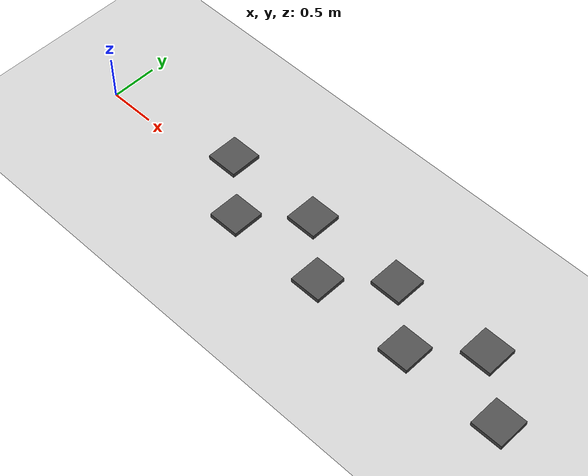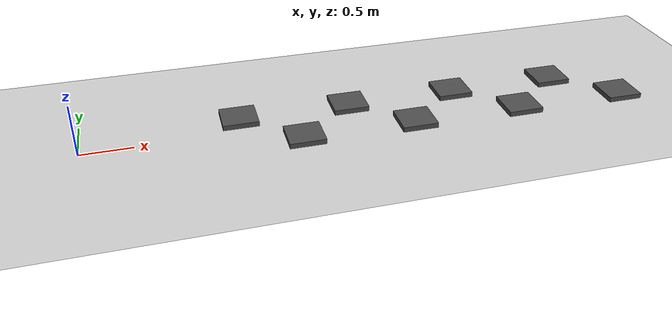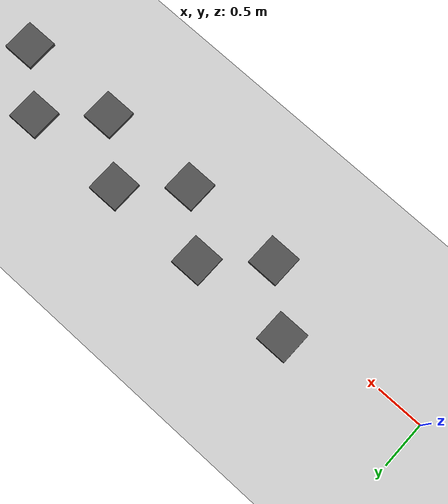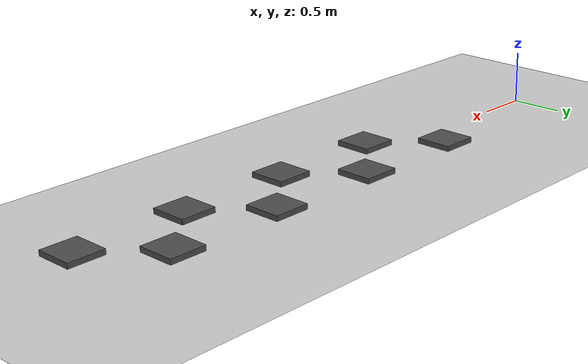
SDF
<?xml version="1.0" ?>
<!-- 由 omni_world.py 自动生成: scene=stepping seed=1 -->
<sdf version="1.5">
  <world name="stepping">
    <physics type="ode">
      <type>world</type>
      <max_step_size>0.001</max_step_size>
      <real_time_update_rate>1000</real_time_update_rate>
      <iters>500</iters>
    </physics>
    <include><uri>model://sun</uri></include>
    <include><uri>model://ground_plane</uri></include>
    <model name="stone_0">
      <static>true</static>
      <pose>1.500 0.250 0.025 0.0000 0.0000 0.0000</pose>
      <link name="link">
        <collision name="collision">
          <geometry><box><size>0.350 0.350 0.050</size></box></geometry>
          <surface><friction><ode><mu>1.0</mu><mu2>1.0</mu2></ode></friction></surface>
        </collision>
        <visual name="visual">
          <geometry><box><size>0.350 0.350 0.050</size></box></geometry>
          <material><script><uri>file://media/materials/scripts/gazebo.material</uri>
            <name>Gazebo/DarkGrey</name></script></material>
        </visual>
      </link>
    </model>
    <model name="stone_1">
      <static>true</static>
      <pose>2.050 -0.250 0.025 0.0000 0.0000 0.0000</pose>
      <link name="link">
        <collision name="collision">
          <geometry><box><size>0.350 0.350 0.050</size></box></geometry>
          <surface><friction><ode><mu>1.0</mu><mu2>1.0</mu2></ode></friction></surface>
        </collision>
        <visual name="visual">
          <geometry><box><size>0.350 0.350 0.050</size></box></geometry>
          <material><script><uri>file://media/materials/scripts/gazebo.material</uri>
            <name>Gazebo/DarkGrey</name></script></material>
        </visual>
      </link>
    </model>
    <model name="stone_2">
      <static>true</static>
      <pose>2.600 0.250 0.025 0.0000 0.0000 0.0000</pose>
      <link name="link">
        <collision name="collision">
          <geometry><box><size>0.350 0.350 0.050</size></box></geometry>
          <surface><friction><ode><mu>1.0</mu><mu2>1.0</mu2></ode></friction></surface>
        </collision>
        <visual name="visual">
          <geometry><box><size>0.350 0.350 0.050</size></box></geometry>
          <material><script><uri>file://media/materials/scripts/gazebo.material</uri>
            <name>Gazebo/DarkGrey</name></script></material>
        </visual>
      </link>
    </model>
    <model name="stone_3">
      <static>true</static>
      <pose>3.150 -0.250 0.025 0.0000 0.0000 0.0000</pose>
      <link name="link">
        <collision name="collision">
          <geometry><box><size>0.350 0.350 0.050</size></box></geometry>
          <surface><friction><ode><mu>1.0</mu><mu2>1.0</mu2></ode></friction></surface>
        </collision>
        <visual name="visual">
          <geometry><box><size>0.350 0.350 0.050</size></box></geometry>
          <material><script><uri>file://media/materials/scripts/gazebo.material</uri>
            <name>Gazebo/DarkGrey</name></script></material>
        </visual>
      </link>
    </model>
    <model name="stone_4">
      <static>true</static>
      <pose>3.700 0.250 0.025 0.0000 0.0000 0.0000</pose>
      <link name="link">
        <collision name="collision">
          <geometry><box><size>0.350 0.350 0.050</size></box></geometry>
          <surface><friction><ode><mu>1.0</mu><mu2>1.0</mu2></ode></friction></surface>
        </collision>
        <visual name="visual">
          <geometry><box><size>0.350 0.350 0.050</size></box></geometry>
          <material><script><uri>file://media/materials/scripts/gazebo.material</uri>
            <name>Gazebo/DarkGrey</name></script></material>
        </visual>
      </link>
    </model>
    <model name="stone_5">
      <static>true</static>
      <pose>4.250 -0.250 0.025 0.0000 0.0000 0.0000</pose>
      <link name="link">
        <collision name="collision">
          <geometry><box><size>0.350 0.350 0.050</size></box></geometry>
          <surface><friction><ode><mu>1.0</mu><mu2>1.0</mu2></ode></friction></surface>
        </collision>
        <visual name="visual">
          <geometry><box><size>0.350 0.350 0.050</size></box></geometry>
          <material><script><uri>file://media/materials/scripts/gazebo.material</uri>
            <name>Gazebo/DarkGrey</name></script></material>
        </visual>
      </link>
    </model>
    <model name="stone_6">
      <static>true</static>
      <pose>4.800 0.250 0.025 0.0000 0.0000 0.0000</pose>
      <link name="link">
        <collision name="collision">
          <geometry><box><size>0.350 0.350 0.050</size></box></geometry>
          <surface><friction><ode><mu>1.0</mu><mu2>1.0</mu2></ode></friction></surface>
        </collision>
        <visual name="visual">
          <geometry><box><size>0.350 0.350 0.050</size></box></geometry>
          <material><script><uri>file://media/materials/scripts/gazebo.material</uri>
            <name>Gazebo/DarkGrey</name></script></material>
        </visual>
      </link>
    </model>
    <model name="stone_7">
      <static>true</static>
      <pose>5.350 -0.250 0.025 0.0000 0.0000 0.0000</pose>
      <link name="link">
        <collision name="collision">
          <geometry><box><size>0.350 0.350 0.050</size></box></geometry>
          <surface><friction><ode><mu>1.0</mu><mu2>1.0</mu2></ode></friction></surface>
        </collision>
        <visual name="visual">
          <geometry><box><size>0.350 0.350 0.050</size></box></geometry>
          <material><script><uri>file://media/materials/scripts/gazebo.material</uri>
            <name>Gazebo/DarkGrey</name></script></material>
        </visual>
      </link>
    </model>

  </world>
</sdf>
